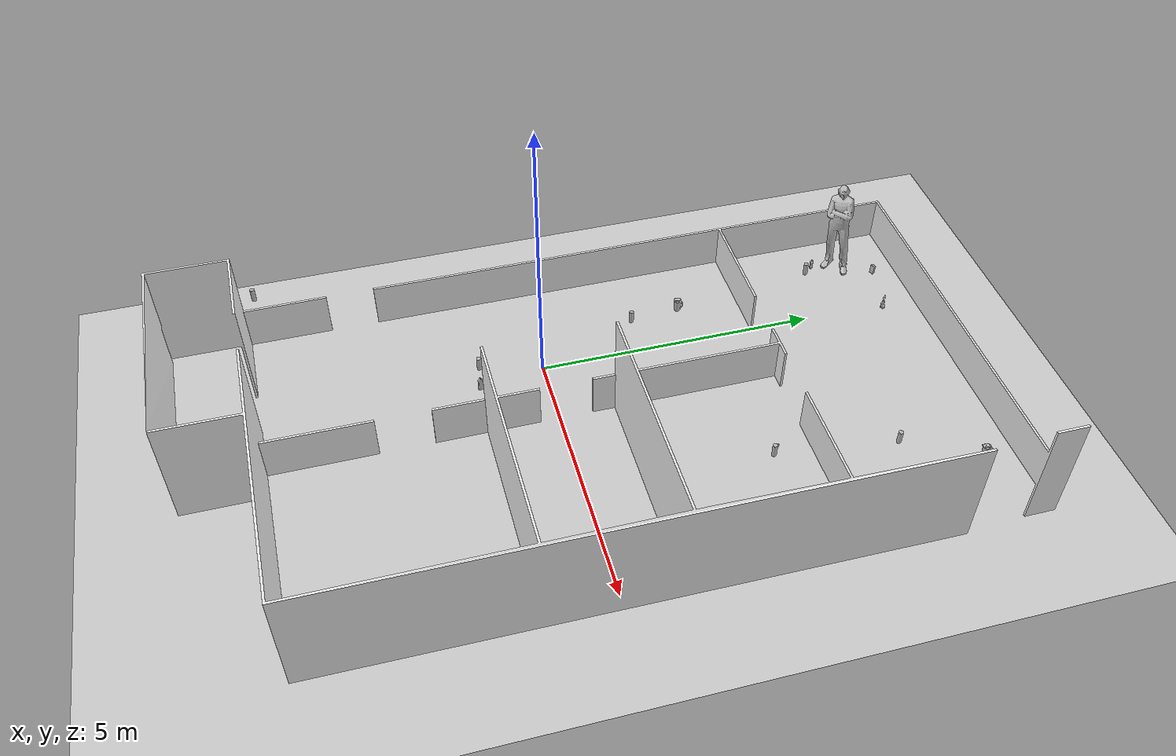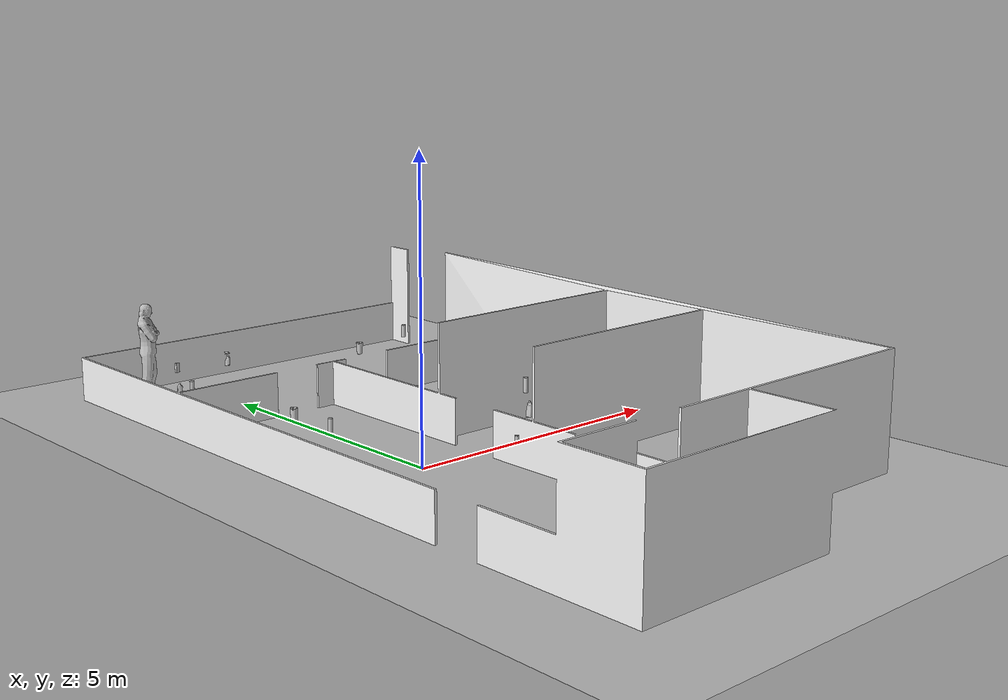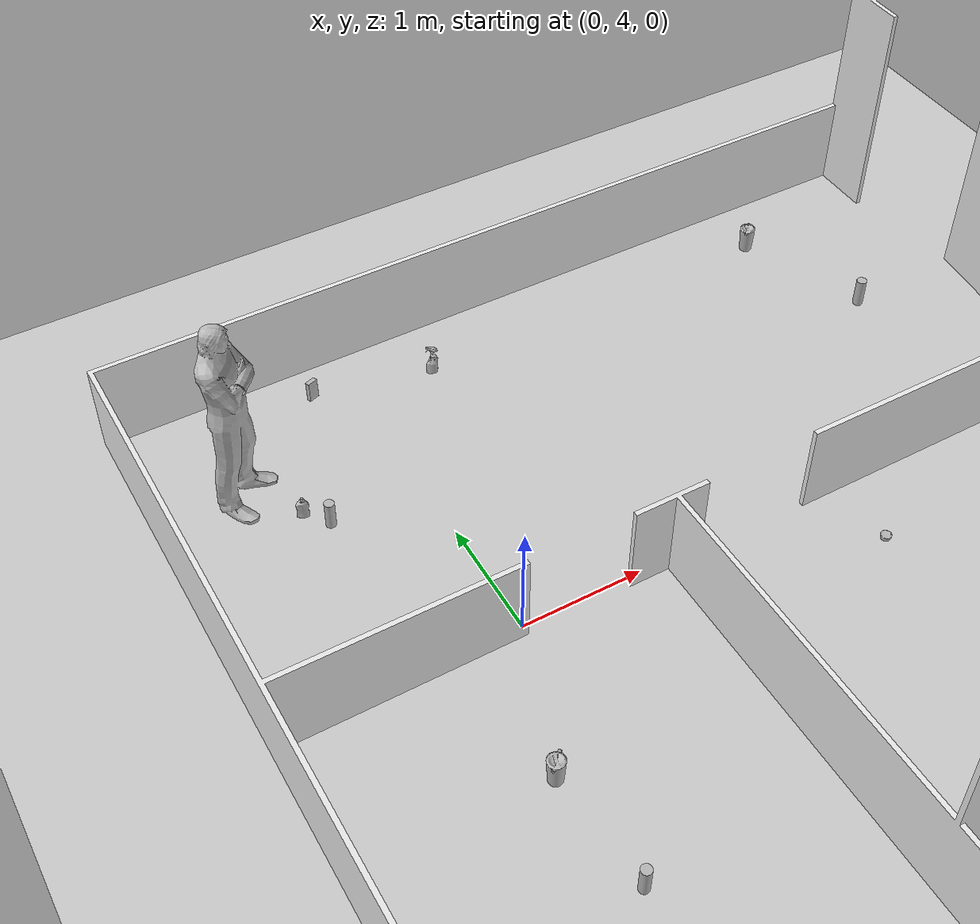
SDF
<sdf version="1.6">
 <world name="robocup">
  <physics name="default_physics" default="0" type="ode">
   <ode>
    <solver>
     <type>quick</type>
     <iters>20</iters>
     <sor>1</sor>
     <use_dynamic_moi_rescaling>0</use_dynamic_moi_rescaling>
    </solver>
    <constraints>
     <cfm>0</cfm>
     <erp>0.2</erp>
     <contact_max_correcting_vel>100</contact_max_correcting_vel>
     <contact_surface_layer>0</contact_surface_layer>
    </constraints>
   </ode>
   <real_time_update_rate>1000</real_time_update_rate>
   <max_step_size>0.001</max_step_size>
   <real_time_factor>1</real_time_factor>
  </physics>
  <light name="sun" type="directional">
   <pose>0 0 10 0 -0 0</pose>
   <diffuse>0.8 0.8 0.8 1</diffuse>
   <specular>0.1 0.1 0.1 1</specular>
   <attenuation>
    <range>1000</range>
    <constant>0.9</constant>
    <linear>0.01</linear>
    <quadratic>0.001</quadratic>
   </attenuation>
   <direction>-0.5 0.5 -1</direction>
  </light>
  <model name="ground_plane">
   <static>1</static>
   <link name="link">
    <collision name="collision">
     <geometry><plane><normal>0 0 1</normal><size>100 100</size></plane></geometry>
     <surface><friction><ode><mu>100</mu><mu2>50</mu2></ode></friction></surface>
    </collision>
    <visual name="visual">
     <cast_shadows>0</cast_shadows>
     <geometry><plane><normal>0 0 1</normal><size>100 100</size></plane></geometry>
     <material>
      <script><uri>file://media/materials/scripts/gazebo.material</uri><name>Gazebo/Grey</name></script>
     </material>
    </visual>
   </link>
  </model>
  <model name="housewalls1">
   <static>1</static>
   <link name="link">
    <collision name="colision1">
     <geometry>
      <mesh>
       <uri>model://robocup_walls_70cm_doors/meshes/robocup_house_large_doors_sas.stl</uri>
       <scale>1 1 1</scale>
      </mesh>
     </geometry>
    </collision>
    <visual name="visual1">
     <geometry>
      <mesh>
       <uri>model://robocup_walls_70cm_doors/meshes/robocup_house_large_doors_sas.stl</uri>
       <scale>1 1 1</scale>
      </mesh>
     </geometry>
     <material>
      <script><uri>file://media/materials/scripts/gazebo.material</uri><name>Gazebo/White</name></script>
     </material>
    </visual>
    <velocity_decay><linear>0</linear><angular>0</angular></velocity_decay>
   </link>
   <pose>-2 -5 0 0 -0 0</pose>
  </model>
  <model name="male03">
   <link name="link">
    <inertial>
     <mass>20</mass>
     <inertia><ixx>0</ixx><ixy>0</ixy><ixz>0</ixz><iyy>0</iyy><iyz>0</iyz><izz>0</izz></inertia>
    </inertial>
    <collision name="collision">
     <geometry><mesh><uri>model://citizen_extras_male_03/meshes/mesh.dae</uri></mesh></geometry>
    </collision>
    <visual name="visual">
     <geometry><mesh><uri>model://citizen_extras_male_03/meshes/mesh.dae</uri></mesh></geometry>
    </visual>
   </link>
   <pose>-1.19969 6.10023 0.010903 0.012571 0.002305 0.982953</pose>
  </model>
  <model name="ycb-mustard">
   <link name="link_2">
    <inertial>
     <mass>1</mass>
     <inertia>
      <ixx>0.166667</ixx>
      <ixy>0</ixy>
      <ixz>0</ixz>
      <iyy>0.166667</iyy>
      <iyz>0</iyz>
      <izz>0.166667</izz>
     </inertia>
    </inertial>
    <visual name="visual">
     <geometry><mesh><uri>model://ycb-mustard/meshes/textured.dae</uri><scale>1 1 1</scale></mesh></geometry>
    </visual>
    <collision name="collision">
     <geometry><mesh><uri>model://ycb-mustard/meshes/textured.dae</uri><scale>1 1 1</scale></mesh></geometry>
     <surface>
      <friction>
       <ode><mu>1</mu><mu2>1</mu2><fdir1>0 0 0</fdir1><slip1>0</slip1><slip2>0</slip2></ode>
       <torsional>
        <coefficient>1</coefficient>
        <patch_radius>0</patch_radius>
        <surface_radius>0</surface_radius>
        <use_patch_radius>1</use_patch_radius>
        <ode><slip>0</slip></ode>
       </torsional>
      </friction>
      <bounce><restitution_coefficient>0</restitution_coefficient><threshold>1e+06</threshold></bounce>
      <contact>
       <collide_without_contact>0</collide_without_contact>
       <collide_without_contact_bitmask>1</collide_without_contact_bitmask>
       <collide_bitmask>1</collide_bitmask>
       <ode>
        <soft_cfm>0</soft_cfm>
        <soft_erp>0.2</soft_erp>
        <kp>1e+13</kp>
        <kd>1</kd>
        <max_vel>0.01</max_vel>
        <min_depth>0</min_depth>
       </ode>
       <bullet>
        <split_impulse>1</split_impulse>
        <split_impulse_penetration_threshold>-0.01</split_impulse_penetration_threshold>
        <soft_cfm>0</soft_cfm>
        <soft_erp>0.2</soft_erp>
        <kp>1e+13</kp>
        <kd>1</kd>
       </bullet>
      </contact>
     </surface>
    </collision>
   </link>
   <static>1</static>
   <pose>-1.00422 5.50495 0.30154 0 -0 0</pose>
  </model>
  <gravity>0 0 -9.81</gravity>
  <magnetic_field>6e-06 2.3e-05 -4.2e-05</magnetic_field>
  <atmosphere type="adiabatic"/>
  <scene><ambient>0.4 0.4 0.4 1</ambient><background>0.7 0.7 0.7 1</background><shadows>1</shadows></scene>
  <spherical_coordinates>
   <surface_model>EARTH_WGS84</surface_model>
   <latitude_deg>0</latitude_deg>
   <longitude_deg>0</longitude_deg>
   <elevation>0</elevation>
   <heading_deg>0</heading_deg>
  </spherical_coordinates>
  <model name="ycb-bleach_clone">
   <link name="link_8">
    <inertial>
     <mass>1</mass>
     <inertia>
      <ixx>0.166667</ixx>
      <ixy>0</ixy>
      <ixz>0</ixz>
      <iyy>0.166667</iyy>
      <iyz>0</iyz>
      <izz>0.166667</izz>
     </inertia>
    </inertial>
    <visual name="visual">
     <geometry><mesh><uri>model://ycb-bleach/meshes/textured.dae</uri><scale>1 1 1</scale></mesh></geometry>
    </visual>
    <collision name="collision">
     <geometry><mesh><uri>/model://ycb-bleach/meshes/textured.dae</uri><scale>1 1 1</scale></mesh></geometry>
     <surface>
      <friction>
       <ode><mu>1</mu><mu2>1</mu2><fdir1>0 0 0</fdir1><slip1>0</slip1><slip2>0</slip2></ode>
       <torsional>
        <coefficient>1</coefficient>
        <patch_radius>0</patch_radius>
        <surface_radius>0</surface_radius>
        <use_patch_radius>1</use_patch_radius>
        <ode><slip>0</slip></ode>
       </torsional>
      </friction>
      <bounce><restitution_coefficient>0</restitution_coefficient><threshold>1e+06</threshold></bounce>
      <contact>
       <collide_without_contact>0</collide_without_contact>
       <collide_without_contact_bitmask>1</collide_without_contact_bitmask>
       <collide_bitmask>1</collide_bitmask>
       <ode>
        <soft_cfm>0</soft_cfm>
        <soft_erp>0.2</soft_erp>
        <kp>1e+13</kp>
        <kd>1</kd>
        <max_vel>0.01</max_vel>
        <min_depth>0</min_depth>
       </ode>
       <bullet>
        <split_impulse>1</split_impulse>
        <split_impulse_penetration_threshold>-0.01</split_impulse_penetration_threshold>
        <soft_cfm>0</soft_cfm>
        <soft_erp>0.2</soft_erp>
        <kp>1e+13</kp>
        <kd>1</kd>
       </bullet>
      </contact>
     </surface>
    </collision>
   </link>
   <static>1</static>
   <pose>1.06873 -1.30415 0.919867 0 0 -1.27968</pose>
  </model>
  <model name="ycb-pitcher">
   <link name="link_7">
    <inertial>
     <mass>1</mass>
     <inertia>
      <ixx>0.166667</ixx>
      <ixy>0</ixy>
      <ixz>0</ixz>
      <iyy>0.166667</iyy>
      <iyz>0</iyz>
      <izz>0.166667</izz>
     </inertia>
    </inertial>
    <visual name="visual">
     <geometry><mesh><uri>model://ycb-pitcher/meshes/textured.dae</uri><scale>1 1 1</scale></mesh></geometry>
    </visual>
    <collision name="collision">
     <geometry><mesh><uri>model://ycb-pitcher/meshes/textured.dae</uri><scale>1 1 1</scale></mesh></geometry>
     <surface>
      <friction>
       <ode><mu>1</mu><mu2>1</mu2><fdir1>0 0 0</fdir1><slip1>0</slip1><slip2>0</slip2></ode>
       <torsional>
        <coefficient>1</coefficient>
        <patch_radius>0</patch_radius>
        <surface_radius>0</surface_radius>
        <use_patch_radius>1</use_patch_radius>
        <ode><slip>0</slip></ode>
       </torsional>
      </friction>
      <bounce><restitution_coefficient>0</restitution_coefficient><threshold>1e+06</threshold></bounce>
      <contact>
       <collide_without_contact>0</collide_without_contact>
       <collide_without_contact_bitmask>1</collide_without_contact_bitmask>
       <collide_bitmask>1</collide_bitmask>
       <ode>
        <soft_cfm>0</soft_cfm>
        <soft_erp>0.2</soft_erp>
        <kp>1e+13</kp>
        <kd>1</kd>
        <max_vel>0.01</max_vel>
        <min_depth>0</min_depth>
       </ode>
       <bullet>
        <split_impulse>1</split_impulse>
        <split_impulse_penetration_threshold>-0.01</split_impulse_penetration_threshold>
        <soft_cfm>0</soft_cfm>
        <soft_erp>0.2</soft_erp>
        <kp>1e+13</kp>
        <kd>1</kd>
       </bullet>
      </contact>
     </surface>
    </collision>
   </link>
   <static>1</static>
   <pose>3.89705 6.61011 0 0 -0 0</pose>
  </model>
  <model name="ycb-pitcher_0">
   <link name="link_7">
    <inertial>
     <mass>1</mass>
     <inertia>
      <ixx>0.166667</ixx>
      <ixy>0</ixy>
      <ixz>0</ixz>
      <iyy>0.166667</iyy>
      <iyz>0</iyz>
      <izz>0.166667</izz>
     </inertia>
    </inertial>
    <visual name="visual">
     <geometry><mesh><uri>model://ycb-pitcher/meshes/textured.dae</uri><scale>1 1 1</scale></mesh></geometry>
    </visual>
    <collision name="collision">
     <geometry><mesh><uri>model://ycb-pitcher/meshes/textured.dae</uri><scale>1 1 1</scale></mesh></geometry>
     <surface>
      <friction>
       <ode><mu>1</mu><mu2>1</mu2><fdir1>0 0 0</fdir1><slip1>0</slip1><slip2>0</slip2></ode>
       <torsional>
        <coefficient>1</coefficient>
        <patch_radius>0</patch_radius>
        <surface_radius>0</surface_radius>
        <use_patch_radius>1</use_patch_radius>
        <ode><slip>0</slip></ode>
       </torsional>
      </friction>
      <bounce><restitution_coefficient>0</restitution_coefficient><threshold>1e+06</threshold></bounce>
      <contact>
       <collide_without_contact>0</collide_without_contact>
       <collide_without_contact_bitmask>1</collide_without_contact_bitmask>
       <collide_bitmask>1</collide_bitmask>
       <ode>
        <soft_cfm>0</soft_cfm>
        <soft_erp>0.2</soft_erp>
        <kp>1e+13</kp>
        <kd>1</kd>
        <max_vel>0.01</max_vel>
        <min_depth>0</min_depth>
       </ode>
       <bullet>
        <split_impulse>1</split_impulse>
        <split_impulse_penetration_threshold>-0.01</split_impulse_penetration_threshold>
        <soft_cfm>0</soft_cfm>
        <soft_erp>0.2</soft_erp>
        <kp>1e+13</kp>
        <kd>1</kd>
       </bullet>
      </contact>
     </surface>
    </collision>
   </link>
   <static>1</static>
   <pose>-0.53333 2.63182 0.303831 0 -0 0</pose>
  </model>
  <model name="ycb-tuna">
   <link name="link_3">
    <inertial>
     <mass>1</mass>
     <inertia>
      <ixx>0.166667</ixx>
      <ixy>0</ixy>
      <ixz>0</ixz>
      <iyy>0.166667</iyy>
      <iyz>0</iyz>
      <izz>0.166667</izz>
     </inertia>
    </inertial>
    <visual name="visual">
     <geometry><mesh><uri>model://ycb-tuna/meshes/textured.dae</uri><scale>1 1 1</scale></mesh></geometry>
    </visual>
    <collision name="collision">
     <geometry><mesh><uri>model://ycb-tuna/meshes/textured.dae</uri><scale>1 1 1</scale></mesh></geometry>
     <surface>
      <friction>
       <ode><mu>1</mu><mu2>1</mu2><fdir1>0 0 0</fdir1><slip1>0</slip1><slip2>0</slip2></ode>
       <torsional>
        <coefficient>1</coefficient>
        <patch_radius>0</patch_radius>
        <surface_radius>0</surface_radius>
        <use_patch_radius>1</use_patch_radius>
        <ode><slip>0</slip></ode>
       </torsional>
      </friction>
      <bounce><restitution_coefficient>0</restitution_coefficient><threshold>1e+06</threshold></bounce>
      <contact>
       <collide_without_contact>0</collide_without_contact>
       <collide_without_contact_bitmask>1</collide_without_contact_bitmask>
       <collide_bitmask>1</collide_bitmask>
       <ode>
        <soft_cfm>0</soft_cfm>
        <soft_erp>0.2</soft_erp>
        <kp>1e+13</kp>
        <kd>1</kd>
        <max_vel>0.01</max_vel>
        <min_depth>0</min_depth>
       </ode>
       <bullet>
        <split_impulse>1</split_impulse>
        <split_impulse_penetration_threshold>-0.01</split_impulse_penetration_threshold>
        <soft_cfm>0</soft_cfm>
        <soft_erp>0.2</soft_erp>
        <kp>1e+13</kp>
        <kd>1</kd>
       </bullet>
      </contact>
     </surface>
    </collision>
   </link>
   <static>1</static>
   <pose>2.82333 3.3837 0 0 -0 0</pose>
  </model>
  <model name="ycb-windex_0">
   <link name="link_9">
    <inertial>
     <mass>1</mass>
     <inertia>
      <ixx>0.166667</ixx>
      <ixy>0</ixy>
      <ixz>0</ixz>
      <iyy>0.166667</iyy>
      <iyz>0</iyz>
      <izz>0.166667</izz>
     </inertia>
    </inertial>
    <visual name="visual">
     <geometry><mesh><uri>model://ycb-windex/meshes/textured.dae</uri><scale>1 1 1</scale></mesh></geometry>
    </visual>
    <collision name="collision">
     <geometry><mesh><uri>model://ycb-windex/meshes/textured.dae</uri><scale>1 1 1</scale></mesh></geometry>
     <surface>
      <friction>
       <ode><mu>1</mu><mu2>1</mu2><fdir1>0 0 0</fdir1><slip1>0</slip1><slip2>0</slip2></ode>
       <torsional>
        <coefficient>1</coefficient>
        <patch_radius>0</patch_radius>
        <surface_radius>0</surface_radius>
        <use_patch_radius>1</use_patch_radius>
        <ode><slip>0</slip></ode>
       </torsional>
      </friction>
      <bounce><restitution_coefficient>0</restitution_coefficient><threshold>1e+06</threshold></bounce>
      <contact>
       <collide_without_contact>0</collide_without_contact>
       <collide_without_contact_bitmask>1</collide_without_contact_bitmask>
       <collide_bitmask>1</collide_bitmask>
       <ode>
        <soft_cfm>0</soft_cfm>
        <soft_erp>0.2</soft_erp>
        <kp>1e+13</kp>
        <kd>1</kd>
        <max_vel>0.01</max_vel>
        <min_depth>0</min_depth>
       </ode>
       <bullet>
        <split_impulse>1</split_impulse>
        <split_impulse_penetration_threshold>-0.01</split_impulse_penetration_threshold>
        <soft_cfm>0</soft_cfm>
        <soft_erp>0.2</soft_erp>
        <kp>1e+13</kp>
        <kd>1</kd>
       </bullet>
      </contact>
     </surface>
    </collision>
   </link>
   <static>1</static>
   <pose>0.478193 6.23429 0.402943 0 -0 1.15948</pose>
  </model>
  <model name="ycb-sugar">
   <link name="link_0">
    <inertial>
     <mass>1</mass>
     <inertia>
      <ixx>0.166667</ixx>
      <ixy>0</ixy>
      <ixz>0</ixz>
      <iyy>0.166667</iyy>
      <iyz>0</iyz>
      <izz>0.166667</izz>
     </inertia>
    </inertial>
    <visual name="visual">
     <geometry><mesh><uri>model://ycb-sugar/meshes/textured.dae</uri><scale>1 1 1</scale></mesh></geometry>
    </visual>
    <collision name="collision">
     <geometry><mesh><uri>model://ycb-sugar/meshes/textured.dae</uri><scale>1 1 1</scale></mesh></geometry>
     <surface>
      <friction>
       <ode><mu>1</mu><mu2>1</mu2><fdir1>0 0 0</fdir1><slip1>0</slip1><slip2>0</slip2></ode>
       <torsional>
        <coefficient>1</coefficient>
        <patch_radius>0</patch_radius>
        <surface_radius>0</surface_radius>
        <use_patch_radius>1</use_patch_radius>
        <ode><slip>0</slip></ode>
       </torsional>
      </friction>
      <bounce><restitution_coefficient>0</restitution_coefficient><threshold>1e+06</threshold></bounce>
      <contact>
       <collide_without_contact>0</collide_without_contact>
       <collide_without_contact_bitmask>1</collide_without_contact_bitmask>
       <collide_bitmask>1</collide_bitmask>
       <ode>
        <soft_cfm>0</soft_cfm>
        <soft_erp>0.2</soft_erp>
        <kp>1e+13</kp>
        <kd>1</kd>
        <max_vel>0.01</max_vel>
        <min_depth>0</min_depth>
       </ode>
       <bullet>
        <split_impulse>1</split_impulse>
        <split_impulse_penetration_threshold>-0.01</split_impulse_penetration_threshold>
        <soft_cfm>0</soft_cfm>
        <soft_erp>0.2</soft_erp>
        <kp>1e+13</kp>
        <kd>1</kd>
       </bullet>
      </contact>
     </surface>
    </collision>
   </link>
   <static>1</static>
   <pose>-0.45635 6.47018 0.400011 0 0 -1.18382</pose>
  </model>
  <model name="ycb-tomatosoup">
   <link name="link_1">
    <inertial>
     <mass>1</mass>
     <inertia>
      <ixx>0.166667</ixx>
      <ixy>0</ixy>
      <ixz>0</ixz>
      <iyy>0.166667</iyy>
      <iyz>0</iyz>
      <izz>0.166667</izz>
     </inertia>
    </inertial>
    <visual name="visual">
     <geometry><mesh><uri>model://ycb-tomatosoup/meshes/textured.dae</uri><scale>1 1 1</scale></mesh></geometry>
    </visual>
    <collision name="collision">
     <geometry><mesh><uri>model://ycb-tomatosoup/meshes/textured.dae</uri><scale>1 1 1</scale></mesh></geometry>
     <surface>
      <friction>
       <ode><mu>1</mu><mu2>1</mu2><fdir1>0 0 0</fdir1><slip1>0</slip1><slip2>0</slip2></ode>
       <torsional>
        <coefficient>1</coefficient>
        <patch_radius>0</patch_radius>
        <surface_radius>0</surface_radius>
        <use_patch_radius>1</use_patch_radius>
        <ode><slip>0</slip></ode>
       </torsional>
      </friction>
      <bounce><restitution_coefficient>0</restitution_coefficient><threshold>1e+06</threshold></bounce>
      <contact>
       <collide_without_contact>0</collide_without_contact>
       <collide_without_contact_bitmask>1</collide_without_contact_bitmask>
       <collide_bitmask>1</collide_bitmask>
       <ode>
        <soft_cfm>0</soft_cfm>
        <soft_erp>0.2</soft_erp>
        <kp>1e+13</kp>
        <kd>1</kd>
        <max_vel>0.01</max_vel>
        <min_depth>0</min_depth>
       </ode>
       <bullet>
        <split_impulse>1</split_impulse>
        <split_impulse_penetration_threshold>-0.01</split_impulse_penetration_threshold>
        <soft_cfm>0</soft_cfm>
        <soft_erp>0.2</soft_erp>
        <kp>1e+13</kp>
        <kd>1</kd>
       </bullet>
      </contact>
     </surface>
    </collision>
   </link>
   <static>1</static>
   <pose>1.00654 -1.16353 0.522383 0 -0 1.54181</pose>
  </model>
  <audio><device>default</device></audio>
  <model name="pringles">
   <static>0</static>
   <link name="link">
    <inertial>
     <mass>0.25</mass>
     <inertia><ixx>0</ixx><ixy>0</ixy><ixz>0</ixz><iyy>0</iyy><iyz>0</iyz><izz>0</izz></inertia>
    </inertial>
    <collision name="collision">
     <geometry><cylinder><radius>0.04</radius><length>0.235</length></cylinder></geometry>
    </collision>
    <visual name="visual">
     <geometry><cylinder><radius>0.04</radius><length>0.235</length></cylinder></geometry>
     <material>
      <script>
       <uri>model://pringles/material/scripts</uri>
       <uri>model://pringles/material/textures</uri>
       <name>Custom/pringles</name>
      </script>
     </material>
    </visual>
    <velocity_decay><linear>0</linear><angular>0</angular></velocity_decay>
   </link>
   <pose>1.00716 -1.27127 1.43751 0.000103 -6.8e-05 0.000306</pose>
  </model>
  <model name="pringles_clone">
   <static>0</static>
   <link name="link">
    <inertial>
     <mass>0.25</mass>
     <inertia><ixx>0</ixx><ixy>0</ixy><ixz>0</ixz><iyy>0</iyy><iyz>0</iyz><izz>0</izz></inertia>
    </inertial>
    <collision name="collision">
     <geometry><cylinder><radius>0.04</radius><length>0.235</length></cylinder></geometry>
    </collision>
    <visual name="visual">
     <geometry><cylinder><radius>0.04</radius><length>0.235</length></cylinder></geometry>
     <material>
      <script>
       <uri>model://pringles/material/scripts</uri>
       <uri>model://pringles/material/textures</uri>
       <name>Custom/pringles</name>
      </script>
     </material>
    </visual>
    <velocity_decay><linear>0</linear><angular>0</angular></velocity_decay>
   </link>
   <pose>-0.464016 1.76749 0.417498 6.4e-05 -0.000173 0.000166</pose>
  </model>
  <model name="pringles_clone_clone">
   <static>0</static>
   <link name="link">
    <inertial>
     <mass>0.25</mass>
     <inertia><ixx>0</ixx><ixy>0</ixy><ixz>0</ixz><iyy>0</iyy><iyz>0</iyz><izz>0</izz></inertia>
    </inertial>
    <collision name="collision">
     <geometry><cylinder><radius>0.04</radius><length>0.235</length></cylinder></geometry>
    </collision>
    <visual name="visual">
     <geometry><cylinder><radius>0.04</radius><length>0.235</length></cylinder></geometry>
     <material>
      <script>
       <uri>model://pringles/material/scripts</uri>
       <uri>model://pringles/material/textures</uri>
       <name>Custom/pringles</name>
      </script>
     </material>
    </visual>
    <velocity_decay><linear>0</linear><angular>0</angular></velocity_decay>
   </link>
   <pose>3.47935 2.98209 0.777509 0.000151 -0.000157 0.000266</pose>
  </model>
  <model name="pringles_clone_clone_clone">
   <static>0</static>
   <link name="link">
    <inertial>
     <mass>0.25</mass>
     <inertia><ixx>0</ixx><ixy>0</ixy><ixz>0</ixz><iyy>0</iyy><iyz>0</iyz><izz>0</izz></inertia>
    </inertial>
    <collision name="collision">
     <geometry><cylinder><radius>0.04</radius><length>0.235</length></cylinder></geometry>
    </collision>
    <visual name="visual">
     <geometry><cylinder><radius>0.04</radius><length>0.235</length></cylinder></geometry>
     <material>
      <script>
       <uri>model://pringles/material/scripts</uri>
       <uri>model://pringles/material/textures</uri>
       <name>Custom/pringles</name>
      </script>
     </material>
    </visual>
    <velocity_decay><linear>0</linear><angular>0</angular></velocity_decay>
   </link>
   <pose>3.73871 5.031 0.777504 2e-05 8.8e-05 0.000234</pose>
  </model>
  <model name="pringles_clone_0">
   <static>0</static>
   <link name="link">
    <inertial>
     <mass>0.25</mass>
     <inertia><ixx>0</ixx><ixy>0</ixy><ixz>0</ixz><iyy>0</iyy><iyz>0</iyz><izz>0</izz></inertia>
    </inertial>
    <collision name="collision">
     <geometry><cylinder><radius>0.04</radius><length>0.235</length></cylinder></geometry>
    </collision>
    <visual name="visual">
     <geometry><cylinder><radius>0.04</radius><length>0.235</length></cylinder></geometry>
     <material>
      <script>
       <uri>model://pringles/material/scripts</uri>
       <uri>model://pringles/material/textures</uri>
       <name>Custom/pringles</name>
      </script>
     </material>
    </visual>
    <velocity_decay><linear>0</linear><angular>0</angular></velocity_decay>
   </link>
   <pose>-0.877235 5.30368 0.417724 0.002574 -0.005117 0.000292</pose>
  </model>
  <model name="pringles_clone_1">
   <static>0</static>
   <link name="link">
    <inertial>
     <mass>0.25</mass>
     <inertia><ixx>0</ixx><ixy>0</ixy><ixz>0</ixz><iyy>0</iyy><iyz>0</iyz><izz>0</izz></inertia>
    </inertial>
    <collision name="collision">
     <geometry><cylinder><radius>0.04</radius><length>0.235</length></cylinder></geometry>
    </collision>
    <visual name="visual">
     <geometry><cylinder><radius>0.04</radius><length>0.235</length></cylinder></geometry>
     <material>
      <script>
       <uri>model://pringles/material/scripts</uri>
       <uri>model://pringles/material/textures</uri>
       <name>Custom/pringles</name>
      </script>
     </material>
    </visual>
    <velocity_decay><linear>0</linear><angular>0</angular></velocity_decay>
   </link>
   <pose>-1.62647 -4.69268 1.43751 -0.000376 0.000228 0.000209</pose>
  </model>
 </world>
</sdf>
